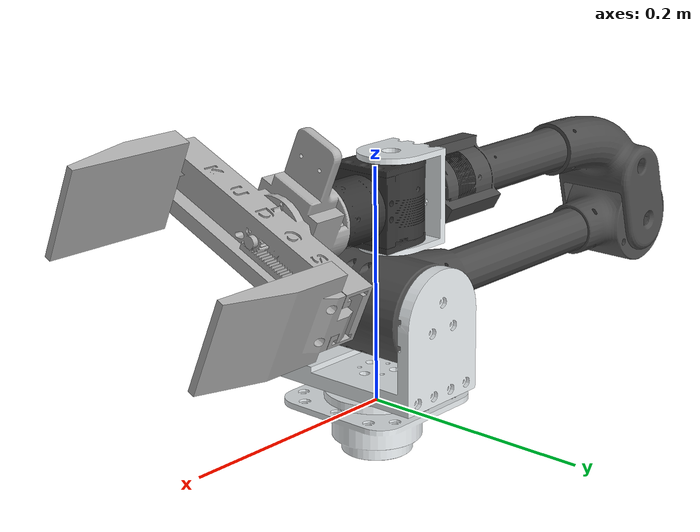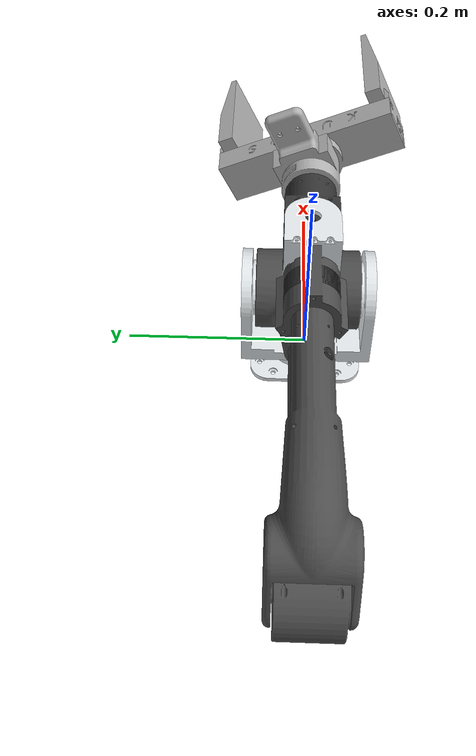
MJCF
<mujoco model="DROK_P_gripper_D405">
  <compiler angle="radian" meshdir="assets/" texturedir="assets/"/>

  <asset>
    <mesh name="ARM_BASE_LINK" content_type="model/obj" file="full/ARM_BASE_LINK.obj"/>
    <mesh name="LINK1" content_type="model/obj" file="full/LINK1.obj"/>
    <mesh name="LINK2" content_type="model/obj" file="full/LINK2.obj"/>
    <mesh name="LINK3" content_type="model/obj" file="full/LINK3.obj"/>
    <mesh name="LINK4" content_type="model/obj" file="full/LINK4.obj"/>
    <mesh name="LINK5" content_type="model/obj" file="full/LINK5.obj"/>
    <mesh name="LINK6" content_type="model/obj" file="full/LINK6.obj"/>
    <mesh name="GRIPPER_BASE" content_type="model/obj" file="full/GRIPPER_BASE.obj"/>
    <mesh name="GRIPPER_LEFT" content_type="model/obj" file="full/GRIPPER_LEFT.obj"/>
    <mesh name="GRIPPER_RIGH" content_type="model/obj" file="full/GRIPPER_RIGH.obj"/>
  </asset>

  <worldbody>
    <body name="ARM_BASE_LINK">
      <inertial pos="2.9813e-07 2.5769e-05 -0.0063007" quat="0.00156553 0.707105 -0.0012727 0.707106" mass="0.68746" diaginertia="0.00078902 0.00047318 0.00047228"/>
      <geom type="mesh" contype="0" conaffinity="0" group="1" density="0" rgba="0.89804 0.91765 0.92941 1" mesh="ARM_BASE_LINK"/>
      <body name="LINK1" pos="0 0 0.016">
        <inertial pos="-6.5604e-05 0.00013328 0.05267" quat="0.495294 0.504662 0.504661 0.495295" mass="1.8725" diaginertia="0.0016195 0.00151872 0.00147168"/>
        <joint name="JOINT1" pos="0 0 0" axis="0 0 1" range="-0.7854 2.26893" actuatorfrcrange="-35 35" damping="2" frictionloss="0.3"/>
        <geom type="mesh" contype="0" conaffinity="0" group="1" density="0" rgba="0.89804 0.91765 0.92941 1" mesh="LINK1"/>
        <body name="LINK2" pos="0 0 0.07">
          <inertial pos="-0.23683 -0.0027683 6.2911e-08" quat="0.501242 0.501256 0.498739 0.498756" mass="1.0336" diaginertia="0.00143981 0.0014082 0.000863376"/>
          <joint name="JOINT2" pos="0 0 0" axis="0 1 0" range="-0.5 3.14159" actuatorfrcrange="-35 35" damping="2" frictionloss="0.3"/>
          <geom type="mesh" contype="0" conaffinity="0" group="1" density="0" rgba="0.29804 0.29804 0.29804 1" mesh="LINK2"/>
          <body name="LINK3" pos="-0.35 -0.00025005 0">
            <inertial pos="0.10819 -0.00014566 0.068578" quat="0.61682 0.344364 0.34595 0.617466" mass="0.61657" diaginertia="0.000810823 0.000681813 0.000302004"/>
            <joint name="JOINT3" pos="0 0 0" axis="0 -1 0" range="0 3.14159" actuatorfrcrange="-35 35" damping="2" frictionloss="0.3"/>
            <geom type="mesh" contype="0" conaffinity="0" group="1" density="0" rgba="0.29804 0.29804 0.29804 1" mesh="LINK3"/>
            <body name="LINK4" pos="0.29265 0 0.083467">
              <inertial pos="0.020782 0 -0.0020268" quat="0.488484 0.488484 -0.511257 0.511257" mass="0.15667" diaginertia="6.33744e-05 5.98246e-05 4.862e-05"/>
              <joint name="JOINT4" pos="0 0 0" axis="1 0 0" range="-5.89101 2.64243" actuatorfrcrange="-35 35" damping="2" frictionloss="0.3"/>
              <geom type="mesh" contype="0" conaffinity="0" group="1" density="0" rgba="0.89804 0.91765 0.92941 1" mesh="LINK4"/>
              <body name="LINK5" pos="0.038 0 0">
                <inertial pos="0.016203 -5.9624e-05 0.0040656" quat="0.447629 0.546934 -0.440504 0.553577" mass="0.31154" diaginertia="0.00015876 0.000107099 0.000106451"/>
                <joint name="JOINT5" pos="0 0 0" axis="0 0 -1" range="-1.52175 1.31947" actuatorfrcrange="-35 35" damping="2" frictionloss="0.3"/>
                <geom type="mesh" contype="0" conaffinity="0" group="1" density="0" rgba="0.20392 0.20392 0.20392 1" mesh="LINK5"/>
                <body name="LINK6" pos="0.081 0 0" quat="0.978147 -0.207912 0 0">
                  <inertial pos="0.028305 -0.00023763 0.011044" quat="0.984775 0.164345 0.054756 -0.0144842" mass="0.093458" diaginertia="5.24553e-05 3.53503e-05 3.41764e-05"/>
                  <joint name="JOINT6" pos="0 0 0" axis="-1 0 0" range="-2.87729 1.3115" actuatorfrcrange="-35 35" damping="2" frictionloss="0.3"/>
                  <geom type="mesh" contype="0" conaffinity="0" group="1" density="0" rgba="0.69804 0.69804 0.69804 1" mesh="LINK6"/>
                  <body name="GRIPPER_BASE" pos="0.08 0 0">
                    <inertial pos="-0.015957 3.8498e-06 -6.7084e-05" quat="0.707093 0.707118 -0.00157763 0.00157051" mass="0.090747" diaginertia="0.00026818 0.0002532 3.2287e-05"/>
                    <geom type="mesh" contype="0" conaffinity="0" group="1" density="0" rgba="0.69804 0.69804 0.69804 1" mesh="GRIPPER_BASE"/>
                    <body name="GRIPPER_LEFT" pos="0.0594 0.078 0">
                      <inertial pos="-0.017307 0.0022021 -0.0021854" quat="0.544058 0.429147 0.531738 0.486918" mass="0.088523" diaginertia="0.000102287 8.38381e-05 6.389e-05"/>
                      <joint name="JOINT7" pos="0 0 0" axis="0 -1 0" type="slide" range="0 0.04" actuatorfrcrange="-100 100" damping="1" frictionloss="0.1"/>
                      <geom type="mesh" contype="0" conaffinity="0" group="1" density="0" rgba="0.69804 0.69804 0.69804 1" mesh="GRIPPER_LEFT"/>
                    </body>
                    <body name="GRIPPER_RIGH" pos="0.0594 -0.078 0">
                      <inertial pos="-0.017307 -0.0022021 0.0021854" quat="0.531738 0.486918 0.544058 0.429147" mass="0.088523" diaginertia="0.000102287 8.38381e-05 6.389e-05"/>
                      <joint name="GRIPPER_RIGHT_JOINT" pos="0 0 0" axis="0 -1 0" type="slide" range="-0.04 0" actuatorfrcrange="-100 100" damping="1" frictionloss="0.1"/>
                      <geom type="mesh" contype="0" conaffinity="0" group="1" density="0" rgba="0.69804 0.69804 0.69804 1" mesh="GRIPPER_RIGH"/>
                    </body>
                    <body name="gripper_center" pos="0.0594 0 0">
                      <body name="gripper_tcp"/>
                    </body>
                  </body>
                </body>
              </body>
            </body>
          </body>
        </body>
      </body>
    </body>
  </worldbody>
</mujoco>
